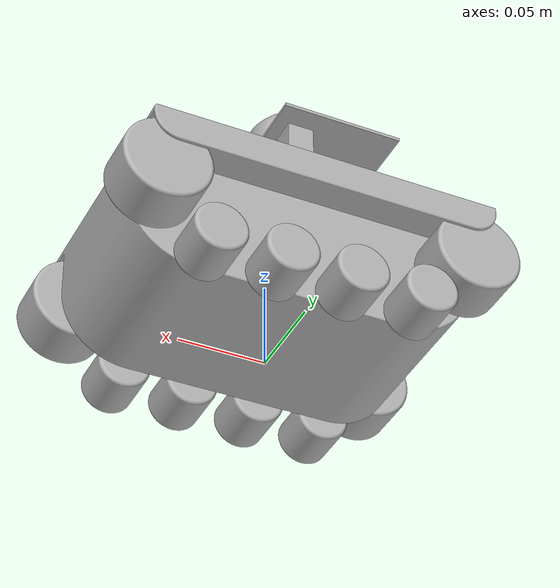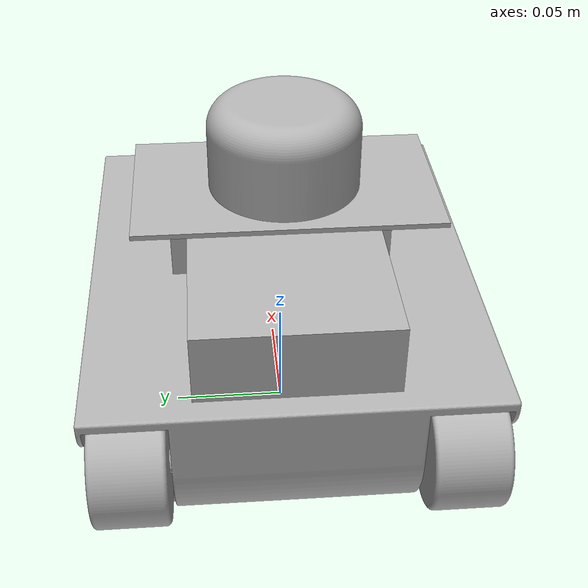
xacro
<?xml version="1.0" ?>
<robot name="rob2" xmlns:xacro="http://www.ros.org/wiki/xacro">

<xacro:include filename="$(find rob2_description)/urdf/materials.xacro" />
<xacro:include filename="$(find rob2_description)/urdf/rob2.ros2control" />
<xacro:include filename="$(find rob2_description)/urdf/rob2.gazebo" />
<link name="base_link">
  <inertial>
    <origin xyz="5.261070536877517e-09 2.835132512450283e-09 0.047758235544868716" rpy="0 0 0"/>
    <mass value="3.6965248052014097"/>
    <inertia ixx="0.005188" iyy="0.012928" izz="0.015067" ixy="0.0" iyz="-0.0" ixz="-0.0"/>
  </inertial>
  <visual>
    <origin xyz="0 0 0" rpy="0 0 0"/>
    <geometry>
      <mesh filename="file://$(find rob2_description)/meshes/base_link.stl" scale="0.001 0.001 0.001"/>
    </geometry>
    <material name="silver"/>
  </visual>
  <collision>
    <origin xyz="0 0 0" rpy="0 0 0"/>
    <geometry>
      <mesh filename="file://$(find rob2_description)/meshes/base_link.stl" scale="0.001 0.001 0.001"/>
    </geometry>
  </collision>
</link>

<link name="B1_1">
  <inertial>
    <origin xyz="2.7755575615628914e-17 0.015 0.0" rpy="0 0 0"/>
    <mass value="0.05453520428020286"/>
    <inertia ixx="1.3e-05" iyy="1.7e-05" izz="1.3e-05" ixy="0.0" iyz="0.0" ixz="0.0"/>
  </inertial>
  <visual>
    <origin xyz="-0.09 -0.05 -0.05" rpy="0 0 0"/>
    <geometry>
      <mesh filename="file://$(find rob2_description)/meshes/B1_1.stl" scale="0.001 0.001 0.001"/>
    </geometry>
    <material name="silver"/>
  </visual>
  <collision>
    <origin xyz="-0.09 -0.05 -0.05" rpy="0 0 0"/>
    <geometry>
      <mesh filename="file://$(find rob2_description)/meshes/B1_1.stl" scale="0.001 0.001 0.001"/>
    </geometry>
  </collision>
</link>

<link name="B2_1">
  <inertial>
    <origin xyz="-6.938893903907228e-18 0.014999999999999986 0.0" rpy="0 0 0"/>
    <mass value="0.019575349969274392"/>
    <inertia ixx="3e-06" iyy="2e-06" izz="3e-06" ixy="-0.0" iyz="-0.0" ixz="0.0"/>
  </inertial>
  <visual>
    <origin xyz="-0.06 -0.05 -0.015" rpy="0 0 0"/>
    <geometry>
      <mesh filename="file://$(find rob2_description)/meshes/B2_1.stl" scale="0.001 0.001 0.001"/>
    </geometry>
    <material name="silver"/>
  </visual>
  <collision>
    <origin xyz="-0.06 -0.05 -0.015" rpy="0 0 0"/>
    <geometry>
      <mesh filename="file://$(find rob2_description)/meshes/B2_1.stl" scale="0.001 0.001 0.001"/>
    </geometry>
  </collision>
</link>

<link name="B3_1">
  <inertial>
    <origin xyz="-1.0408340855860843e-17 0.014999999999999986 -1.734723475976807e-18" rpy="0 0 0"/>
    <mass value="0.019575349969274392"/>
    <inertia ixx="3e-06" iyy="2e-06" izz="3e-06" ixy="-0.0" iyz="-0.0" ixz="-0.0"/>
  </inertial>
  <visual>
    <origin xyz="-0.02 -0.05 -0.015" rpy="0 0 0"/>
    <geometry>
      <mesh filename="file://$(find rob2_description)/meshes/B3_1.stl" scale="0.001 0.001 0.001"/>
    </geometry>
    <material name="silver"/>
  </visual>
  <collision>
    <origin xyz="-0.02 -0.05 -0.015" rpy="0 0 0"/>
    <geometry>
      <mesh filename="file://$(find rob2_description)/meshes/B3_1.stl" scale="0.001 0.001 0.001"/>
    </geometry>
  </collision>
</link>

<link name="B4_1">
  <inertial>
    <origin xyz="-6.938893903907228e-18 0.015 -1.734723475976807e-18" rpy="0 0 0"/>
    <mass value="0.019575349969274392"/>
    <inertia ixx="3e-06" iyy="2e-06" izz="3e-06" ixy="-0.0" iyz="0.0" ixz="-0.0"/>
  </inertial>
  <visual>
    <origin xyz="0.02 -0.05 -0.015" rpy="0 0 0"/>
    <geometry>
      <mesh filename="file://$(find rob2_description)/meshes/B4_1.stl" scale="0.001 0.001 0.001"/>
    </geometry>
    <material name="silver"/>
  </visual>
  <collision>
    <origin xyz="0.02 -0.05 -0.015" rpy="0 0 0"/>
    <geometry>
      <mesh filename="file://$(find rob2_description)/meshes/B4_1.stl" scale="0.001 0.001 0.001"/>
    </geometry>
  </collision>
</link>

<link name="B5_1">
  <inertial>
    <origin xyz="-2.0816681711721685e-17 0.014999999999999986 0.0" rpy="0 0 0"/>
    <mass value="0.019575349969274392"/>
    <inertia ixx="3e-06" iyy="2e-06" izz="3e-06" ixy="0.0" iyz="-0.0" ixz="0.0"/>
  </inertial>
  <visual>
    <origin xyz="0.06 -0.05 -0.015" rpy="0 0 0"/>
    <geometry>
      <mesh filename="file://$(find rob2_description)/meshes/B5_1.stl" scale="0.001 0.001 0.001"/>
    </geometry>
    <material name="silver"/>
  </visual>
  <collision>
    <origin xyz="0.06 -0.05 -0.015" rpy="0 0 0"/>
    <geometry>
      <mesh filename="file://$(find rob2_description)/meshes/B5_1.stl" scale="0.001 0.001 0.001"/>
    </geometry>
  </collision>
</link>

<link name="B6_1">
  <inertial>
    <origin xyz="0.0 0.015000000000000013 0.0" rpy="0 0 0"/>
    <mass value="0.05453520428020285"/>
    <inertia ixx="1.3e-05" iyy="1.7e-05" izz="1.3e-05" ixy="-0.0" iyz="0.0" ixz="0.0"/>
  </inertial>
  <visual>
    <origin xyz="0.09 -0.05 -0.05" rpy="0 0 0"/>
    <geometry>
      <mesh filename="file://$(find rob2_description)/meshes/B6_1.stl" scale="0.001 0.001 0.001"/>
    </geometry>
    <material name="silver"/>
  </visual>
  <collision>
    <origin xyz="0.09 -0.05 -0.05" rpy="0 0 0"/>
    <geometry>
      <mesh filename="file://$(find rob2_description)/meshes/B6_1.stl" scale="0.001 0.001 0.001"/>
    </geometry>
  </collision>
</link>

<link name="J1_1">
  <inertial>
    <origin xyz="0.0 -0.014999999999999986 1.3877787807814457e-17" rpy="0 0 0"/>
    <mass value="0.05453520428020284"/>
    <inertia ixx="1.3e-05" iyy="1.7e-05" izz="1.3e-05" ixy="0.0" iyz="0.0" ixz="0.0"/>
  </inertial>
  <visual>
    <origin xyz="-0.09 0.05 -0.05" rpy="0 0 0"/>
    <geometry>
      <mesh filename="file://$(find rob2_description)/meshes/J1_1.stl" scale="0.001 0.001 0.001"/>
    </geometry>
    <material name="silver"/>
  </visual>
  <collision>
    <origin xyz="-0.09 0.05 -0.05" rpy="0 0 0"/>
    <geometry>
      <mesh filename="file://$(find rob2_description)/meshes/J1_1.stl" scale="0.001 0.001 0.001"/>
    </geometry>
  </collision>
</link>

<link name="J2_1">
  <inertial>
    <origin xyz="0.0 -0.015 3.469446951953614e-17" rpy="0 0 0"/>
    <mass value="0.019575349969274392"/>
    <inertia ixx="3e-06" iyy="2e-06" izz="3e-06" ixy="0.0" iyz="0.0" ixz="0.0"/>
  </inertial>
  <visual>
    <origin xyz="-0.06 0.05 -0.015" rpy="0 0 0"/>
    <geometry>
      <mesh filename="file://$(find rob2_description)/meshes/J2_1.stl" scale="0.001 0.001 0.001"/>
    </geometry>
    <material name="silver"/>
  </visual>
  <collision>
    <origin xyz="-0.06 0.05 -0.015" rpy="0 0 0"/>
    <geometry>
      <mesh filename="file://$(find rob2_description)/meshes/J2_1.stl" scale="0.001 0.001 0.001"/>
    </geometry>
  </collision>
</link>

<link name="J3_1">
  <inertial>
    <origin xyz="-6.938893903907228e-18 -0.015 3.122502256758253e-17" rpy="0 0 0"/>
    <mass value="0.019575349969274392"/>
    <inertia ixx="3e-06" iyy="2e-06" izz="3e-06" ixy="-0.0" iyz="0.0" ixz="0.0"/>
  </inertial>
  <visual>
    <origin xyz="-0.02 0.05 -0.015" rpy="0 0 0"/>
    <geometry>
      <mesh filename="file://$(find rob2_description)/meshes/J3_1.stl" scale="0.001 0.001 0.001"/>
    </geometry>
    <material name="silver"/>
  </visual>
  <collision>
    <origin xyz="-0.02 0.05 -0.015" rpy="0 0 0"/>
    <geometry>
      <mesh filename="file://$(find rob2_description)/meshes/J3_1.stl" scale="0.001 0.001 0.001"/>
    </geometry>
  </collision>
</link>

<link name="J4_1">
  <inertial>
    <origin xyz="-6.938893903907228e-18 -0.015 3.122502256758253e-17" rpy="0 0 0"/>
    <mass value="0.019575349969274392"/>
    <inertia ixx="3e-06" iyy="2e-06" izz="3e-06" ixy="0.0" iyz="-0.0" ixz="-0.0"/>
  </inertial>
  <visual>
    <origin xyz="0.02 0.05 -0.015" rpy="0 0 0"/>
    <geometry>
      <mesh filename="file://$(find rob2_description)/meshes/J4_1.stl" scale="0.001 0.001 0.001"/>
    </geometry>
    <material name="silver"/>
  </visual>
  <collision>
    <origin xyz="0.02 0.05 -0.015" rpy="0 0 0"/>
    <geometry>
      <mesh filename="file://$(find rob2_description)/meshes/J4_1.stl" scale="0.001 0.001 0.001"/>
    </geometry>
  </collision>
</link>

<link name="J5_1">
  <inertial>
    <origin xyz="-2.0816681711721685e-17 -0.015 3.469446951953614e-17" rpy="0 0 0"/>
    <mass value="0.019575349969274392"/>
    <inertia ixx="3e-06" iyy="2e-06" izz="3e-06" ixy="0.0" iyz="0.0" ixz="-0.0"/>
  </inertial>
  <visual>
    <origin xyz="0.06 0.05 -0.015" rpy="0 0 0"/>
    <geometry>
      <mesh filename="file://$(find rob2_description)/meshes/J5_1.stl" scale="0.001 0.001 0.001"/>
    </geometry>
    <material name="silver"/>
  </visual>
  <collision>
    <origin xyz="0.06 0.05 -0.015" rpy="0 0 0"/>
    <geometry>
      <mesh filename="file://$(find rob2_description)/meshes/J5_1.stl" scale="0.001 0.001 0.001"/>
    </geometry>
  </collision>
</link>

<link name="J6_1">
  <inertial>
    <origin xyz="0.0 -0.014999999999999986 6.938893903907228e-18" rpy="0 0 0"/>
    <mass value="0.05453520428020284"/>
    <inertia ixx="1.3e-05" iyy="1.7e-05" izz="1.3e-05" ixy="-0.0" iyz="0.0" ixz="0.0"/>
  </inertial>
  <visual>
    <origin xyz="0.09 0.05 -0.05" rpy="0 0 0"/>
    <geometry>
      <mesh filename="file://$(find rob2_description)/meshes/J6_1.stl" scale="0.001 0.001 0.001"/>
    </geometry>
    <material name="silver"/>
  </visual>
  <collision>
    <origin xyz="0.09 0.05 -0.05" rpy="0 0 0"/>
    <geometry>
      <mesh filename="file://$(find rob2_description)/meshes/J6_1.stl" scale="0.001 0.001 0.001"/>
    </geometry>
  </collision>
</link>

<link name="Component18_1">
  <inertial>
    <origin xyz="-6.938893903907228e-18 3.261528375619884e-17 0.016902647259499914" rpy="0 0 0"/>
    <mass value="0.5732015530381446"/>
    <inertia ixx="0.000181" iyy="0.000181" izz="0.00025" ixy="0.0" iyz="0.0" ixz="0.0"/>
  </inertial>
  <visual>
    <origin xyz="0.02 -0.0 -0.132" rpy="0 0 0"/>
    <geometry>
      <mesh filename="file://$(find rob2_description)/meshes/Component18_1.stl" scale="0.001 0.001 0.001"/>
    </geometry>
    <material name="silver"/>
  </visual>
  <collision>
    <origin xyz="0.02 -0.0 -0.132" rpy="0 0 0"/>
    <geometry>
      <mesh filename="file://$(find rob2_description)/meshes/Component18_1.stl" scale="0.001 0.001 0.001"/>
    </geometry>
  </collision>
</link>

<link name="Component16_1">
  <inertial>
    <origin xyz="-0.05 2.2204460492503132e-17 0.015000000000000013" rpy="0 0 0"/>
    <mass value="1.15584"/>
    <inertia ixx="0.000703" iyy="0.000703" izz="0.001233" ixy="0.0" iyz="0.0" ixz="0.0"/>
  </inertial>
  <visual>
    <origin xyz="-0.0 -0.0 -0.08" rpy="0 0 0"/>
    <geometry>
      <mesh filename="file://$(find rob2_description)/meshes/Component16_1.stl" scale="0.001 0.001 0.001"/>
    </geometry>
    <material name="silver"/>
  </visual>
  <collision>
    <origin xyz="-0.0 -0.0 -0.08" rpy="0 0 0"/>
    <geometry>
      <mesh filename="file://$(find rob2_description)/meshes/Component16_1.stl" scale="0.001 0.001 0.001"/>
    </geometry>
  </collision>
</link>

<link name="Kamera_1">
  <inertial>
    <origin xyz="0.04785555140440506 9.479972362669287e-14 0.02375403663419623" rpy="0 0 0"/>
    <mass value="0.16829615811797438"/>
    <inertia ixx="5.1e-05" iyy="3.9e-05" izz="3.4e-05" ixy="0.0" iyz="-0.0" ixz="8e-06"/>
  </inertial>
  <visual>
    <origin xyz="-0.0 -0.0 -0.08" rpy="0 0 0"/>
    <geometry>
      <mesh filename="file://$(find rob2_description)/meshes/Kamera_1.stl" scale="0.001 0.001 0.001"/>
    </geometry>
    <material name="silver"/>
  </visual>
  <collision>
    <origin xyz="-0.0 -0.0 -0.08" rpy="0 0 0"/>
    <geometry>
      <mesh filename="file://$(find rob2_description)/meshes/Kamera_1.stl" scale="0.001 0.001 0.001"/>
    </geometry>
  </collision>
</link>

<link name="Component17_1">
  <inertial>
    <origin xyz="-0.0275 0.037500000000000026 0.0010000000000000009" rpy="0 0 0"/>
    <mass value="0.04535999999999983"/>
    <inertia ixx="5.4e-05" iyy="1.9e-05" izz="7.3e-05" ixy="0.0" iyz="-0.0" ixz="0.0"/>
  </inertial>
  <visual>
    <origin xyz="-0.0075 0.0375 -0.13" rpy="0 0 0"/>
    <geometry>
      <mesh filename="file://$(find rob2_description)/meshes/Component17_1.stl" scale="0.001 0.001 0.001"/>
    </geometry>
    <material name="silver"/>
  </visual>
  <collision>
    <origin xyz="-0.0075 0.0375 -0.13" rpy="0 0 0"/>
    <geometry>
      <mesh filename="file://$(find rob2_description)/meshes/Component17_1.stl" scale="0.001 0.001 0.001"/>
    </geometry>
  </collision>
</link>

<link name="Component15_1">
  <inertial>
    <origin xyz="-1.1102230246251566e-18 -0.039999999999999966 0.025000000000000036" rpy="0 0 0"/>
    <mass value="0.011925"/>
    <inertia ixx="3e-06" iyy="3e-06" izz="0.0" ixy="-0.0" iyz="-0.0" ixz="-0.0"/>
  </inertial>
  <visual>
    <origin xyz="-0.0 -0.0 -0.08" rpy="0 0 0"/>
    <geometry>
      <mesh filename="file://$(find rob2_description)/meshes/Component15_1.stl" scale="0.001 0.001 0.001"/>
    </geometry>
    <material name="silver"/>
  </visual>
  <collision>
    <origin xyz="-0.0 -0.0 -0.08" rpy="0 0 0"/>
    <geometry>
      <mesh filename="file://$(find rob2_description)/meshes/Component15_1.stl" scale="0.001 0.001 0.001"/>
    </geometry>
  </collision>
</link>

<link name="Component14_1">
  <inertial>
    <origin xyz="-1.5543122344752193e-17 0.03999999999999995 0.024999999999999925" rpy="0 0 0"/>
    <mass value="0.011925"/>
    <inertia ixx="3e-06" iyy="3e-06" izz="0.0" ixy="0.0" iyz="-0.0" ixz="-0.0"/>
  </inertial>
  <visual>
    <origin xyz="-0.0 -0.0 -0.08" rpy="0 0 0"/>
    <geometry>
      <mesh filename="file://$(find rob2_description)/meshes/Component14_1.stl" scale="0.001 0.001 0.001"/>
    </geometry>
    <material name="silver"/>
  </visual>
  <collision>
    <origin xyz="-0.0 -0.0 -0.08" rpy="0 0 0"/>
    <geometry>
      <mesh filename="file://$(find rob2_description)/meshes/Component14_1.stl" scale="0.001 0.001 0.001"/>
    </geometry>
  </collision>
</link>

<joint name="B1_1_joint" type="continuous">
  <origin xyz="0.09 0.05 0.05" rpy="0 0 0"/>
  <parent link="base_link"/>
  <child link="B1_1"/>
  <axis xyz="0 1 0"/>
</joint>

<joint name="B2_1_joint" type="continuous">
  <origin xyz="0.06 0.05 0.015" rpy="0 0 0"/>
  <parent link="base_link"/>
  <child link="B2_1"/>
  <axis xyz="0 1 0"/>
</joint>

<joint name="B3_1_joint" type="continuous">
  <origin xyz="0.02 0.05 0.015" rpy="0 0 0"/>
  <parent link="base_link"/>
  <child link="B3_1"/>
  <axis xyz="0 1 0"/>
</joint>

<joint name="B4_1_joint" type="continuous">
  <origin xyz="-0.02 0.05 0.015" rpy="0 0 0"/>
  <parent link="base_link"/>
  <child link="B4_1"/>
  <axis xyz="0 1 0"/>
</joint>

<joint name="B5_1_joint" type="continuous">
  <origin xyz="-0.06 0.05 0.015" rpy="0 0 0"/>
  <parent link="base_link"/>
  <child link="B5_1"/>
  <axis xyz="0 1 0"/>
</joint>

<joint name="B6_1_joint" type="continuous">
  <origin xyz="-0.09 0.05 0.05" rpy="0 0 0"/>
  <parent link="base_link"/>
  <child link="B6_1"/>
  <axis xyz="0 1 0"/>
</joint>

<joint name="J1_1_joint" type="continuous">
  <origin xyz="0.09 -0.05 0.05" rpy="0 0 0"/>
  <parent link="base_link"/>
  <child link="J1_1"/>
  <axis xyz="0 -1 0"/>
</joint>

<joint name="J2_1_joint" type="continuous">
  <origin xyz="0.06 -0.05 0.015" rpy="0 0 0"/>
  <parent link="base_link"/>
  <child link="J2_1"/>
  <axis xyz="0 -1 0"/>
</joint>

<joint name="J3_1_joint" type="continuous">
  <origin xyz="0.02 -0.05 0.015" rpy="0 0 0"/>
  <parent link="base_link"/>
  <child link="J3_1"/>
  <axis xyz="0 -1 0"/>
</joint>

<joint name="J4_1_joint" type="continuous">
  <origin xyz="-0.02 -0.05 0.015" rpy="0 0 0"/>
  <parent link="base_link"/>
  <child link="J4_1"/>
  <axis xyz="0 -1 0"/>
</joint>

<joint name="J5_1_joint" type="continuous">
  <origin xyz="-0.06 -0.05 0.015" rpy="0 0 0"/>
  <parent link="base_link"/>
  <child link="J5_1"/>
  <axis xyz="0 -1 0"/>
</joint>

<joint name="J6_1_joint" type="continuous">
  <origin xyz="-0.09 -0.05 0.05" rpy="0 0 0"/>
  <parent link="base_link"/>
  <child link="J6_1"/>
  <axis xyz="0 -1 0"/>
</joint>

<joint name="lidar" type="fixed">
  <origin xyz="-0.0275 0.0375 0.002" rpy="0 0 0"/>
  <parent link="Component17_1"/>
  <child link="Component18_1"/>
</joint>

<joint name="vezerlo" type="fixed">
  <origin xyz="0.0 0.0 0.08" rpy="0 0 0"/>
  <parent link="base_link"/>
  <child link="Component16_1"/>
</joint>

<joint name="kamera" type="fixed">
  <origin xyz="0.0 0.0 0.08" rpy="0 0 0"/>
  <parent link="base_link"/>
  <child link="Kamera_1"/>
</joint>

<joint name="Rigid 18" type="fixed">
  <origin xyz="0.0075 -0.0375 0.05" rpy="0 0 0"/>
  <parent link="Component15_1"/>
  <child link="Component17_1"/>
</joint>

<joint name="Rigid 20" type="fixed">
  <origin xyz="0.0 0.0 0.08" rpy="0 0 0"/>
  <parent link="base_link"/>
  <child link="Component15_1"/>
</joint>

<joint name="Rigid 21" type="fixed">
  <origin xyz="0.0 0.0 0.08" rpy="0 0 0"/>
  <parent link="base_link"/>
  <child link="Component14_1"/>
</joint>

<ros2_control name="RobotControlSystem" type="system">
  <hardware>
    <plugin>mock_components/GenericSystem</plugin>
  </hardware>

  <joint name="B1_1_joint">
    <command_interface name="position"/>
    <state_interface name="position"/>
  </joint>

  <joint name="B2_1_joint">
    <command_interface name="position"/>
    <state_interface name="position"/>
  </joint>

  <joint name="B3_1_joint">
    <command_interface name="position"/>
    <state_interface name="position"/>
  </joint>

  <joint name="B4_1_joint">
    <command_interface name="position"/>
    <state_interface name="position"/>
  </joint>

  <joint name="B5_1_joint">
    <command_interface name="position"/>
    <state_interface name="position"/>
  </joint>

  <joint name="B6_1_joint">
    <command_interface name="position"/>
    <state_interface name="position"/>
  </joint>

  <joint name="J1_1_joint">
    <command_interface name="position"/>
    <state_interface name="position"/>
  </joint>

  <joint name="J2_1_joint">
    <command_interface name="position"/>
    <state_interface name="position"/>
  </joint>

  <joint name="J3_1_joint">
    <command_interface name="position"/>
    <state_interface name="position"/>
  </joint>

  <joint name="J4_1_joint">
    <command_interface name="position"/>
    <state_interface name="position"/>
  </joint>

  <joint name="J5_1_joint">
    <command_interface name="position"/>
    <state_interface name="position"/>
  </joint>

  <joint name="J6_1_joint">
    <command_interface name="position"/>
    <state_interface name="position"/>
  </joint>

</ros2_control>

</robot>

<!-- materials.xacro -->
<robot name="rob2" xmlns:xacro="http://www.ros.org/wiki/xacro" >

<material name="silver">
  <color rgba="0.700 0.700 0.700 1.000"/>
</material>

</robot>

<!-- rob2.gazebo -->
<robot name="rob2" xmlns:xacro="http://www.ros.org/wiki/xacro" >

<xacro:property name="body_color" value="Gazebo/Silver" />

<gazebo reference="base_link">
  <material>${body_color}</material>
  <mu1>0.2</mu1>
  <mu2>0.2</mu2>
  <self_collide>true</self_collide>
  <gravity>true</gravity>
</gazebo>

<gazebo reference="B1_1">
  <material>${body_color}</material>
  <mu1>0.2</mu1>
  <mu2>0.2</mu2>
  <self_collide>true</self_collide>
</gazebo>

<gazebo reference="B2_1">
  <material>${body_color}</material>
  <mu1>0.2</mu1>
  <mu2>0.2</mu2>
  <self_collide>true</self_collide>
</gazebo>

<gazebo reference="B3_1">
  <material>${body_color}</material>
  <mu1>0.2</mu1>
  <mu2>0.2</mu2>
  <self_collide>true</self_collide>
</gazebo>

<gazebo reference="B4_1">
  <material>${body_color}</material>
  <mu1>0.2</mu1>
  <mu2>0.2</mu2>
  <self_collide>true</self_collide>
</gazebo>

<gazebo reference="B5_1">
  <material>${body_color}</material>
  <mu1>0.2</mu1>
  <mu2>0.2</mu2>
  <self_collide>true</self_collide>
</gazebo>

<gazebo reference="B6_1">
  <material>${body_color}</material>
  <mu1>0.2</mu1>
  <mu2>0.2</mu2>
  <self_collide>true</self_collide>
</gazebo>

<gazebo reference="J1_1">
  <material>${body_color}</material>
  <mu1>0.2</mu1>
  <mu2>0.2</mu2>
  <self_collide>true</self_collide>
</gazebo>

<gazebo reference="J2_1">
  <material>${body_color}</material>
  <mu1>0.2</mu1>
  <mu2>0.2</mu2>
  <self_collide>true</self_collide>
</gazebo>

<gazebo reference="J3_1">
  <material>${body_color}</material>
  <mu1>0.2</mu1>
  <mu2>0.2</mu2>
  <self_collide>true</self_collide>
</gazebo>

<gazebo reference="J4_1">
  <material>${body_color}</material>
  <mu1>0.2</mu1>
  <mu2>0.2</mu2>
  <self_collide>true</self_collide>
</gazebo>

<gazebo reference="J5_1">
  <material>${body_color}</material>
  <mu1>0.2</mu1>
  <mu2>0.2</mu2>
  <self_collide>true</self_collide>
</gazebo>

<gazebo reference="J6_1">
  <material>${body_color}</material>
  <mu1>0.2</mu1>
  <mu2>0.2</mu2>
  <self_collide>true</self_collide>
</gazebo>

<gazebo reference="Component18_1">
  <material>${body_color}</material>
  <mu1>0.2</mu1>
  <mu2>0.2</mu2>
  <self_collide>true</self_collide>
</gazebo>

<gazebo reference="Component16_1">
  <material>${body_color}</material>
  <mu1>0.2</mu1>
  <mu2>0.2</mu2>
  <self_collide>true</self_collide>
</gazebo>

<gazebo reference="Kamera_1">
  <material>${body_color}</material>
  <mu1>0.2</mu1>
  <mu2>0.2</mu2>
  <self_collide>true</self_collide>
</gazebo>

<gazebo reference="Component17_1">
  <material>${body_color}</material>
  <mu1>0.2</mu1>
  <mu2>0.2</mu2>
  <self_collide>true</self_collide>
</gazebo>

<gazebo reference="Component15_1">
  <material>${body_color}</material>
  <mu1>0.2</mu1>
  <mu2>0.2</mu2>
  <self_collide>true</self_collide>
</gazebo>

<gazebo reference="Component14_1">
  <material>${body_color}</material>
  <mu1>0.2</mu1>
  <mu2>0.2</mu2>
  <self_collide>true</self_collide>
</gazebo>

</robot>
